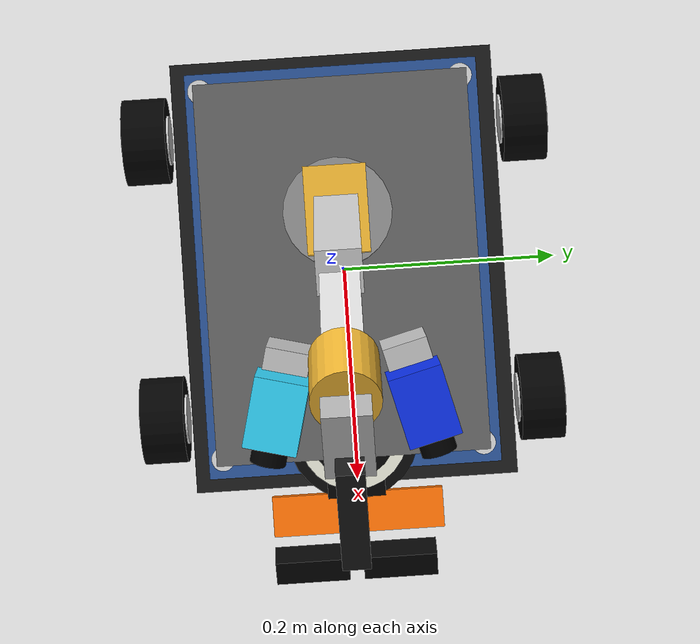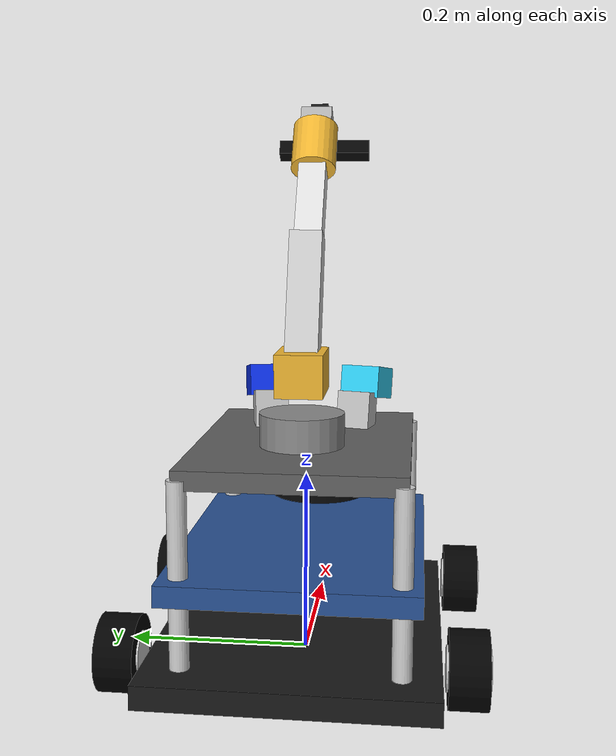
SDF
<?xml version="1.0"?>
<sdf version="1.10">
  <model name="mobile_sorting_robot">

    <!-- Kinematic omnidirectional base: direct model velocity     -->
    <plugin filename="gz-sim-velocity-control-system"
      name="gz::sim::systems::VelocityControl">
      <topic>/model/mobile_sorting_robot/cmd_vel</topic>
    </plugin>

    <!-- Ground-truth odometry publisher for simulation / ROS bridge -->
    <plugin filename="gz-sim-odometry-publisher-system"
      name="gz::sim::systems::OdometryPublisher">
      <odom_topic>/model/mobile_sorting_robot/odometry</odom_topic>
      <tf_topic>/model/mobile_sorting_robot/tf</tf_topic>
      <odom_frame>odom</odom_frame>
      <robot_base_frame>base_link</robot_base_frame>
      <dimensions>2</dimensions>
      <odom_publish_frequency>50</odom_publish_frequency>
    </plugin>

    <!-- Base link: three-layer chassis + visible IMU + IMU sensor -->
    <link name="base_link">
      <pose>0 0 0 0 0 0</pose>

      <inertial>
        <mass>4.0</mass>
        <inertia>
          <ixx>0.030</ixx>
          <iyy>0.045</iyy>
          <izz>0.055</izz>
          <ixy>0</ixy>
          <ixz>0</ixz>
          <iyz>0</iyz>
        </inertia>
      </inertial>

      <!-- Simple collision envelope for the upper chassis only.
           Keep it above the wheels to avoid ground / wheel contact jitter. -->
      <collision name="base_collision">
        <pose>0 0 0.125 0 0 0</pose>
        <geometry>
          <box>
            <size>0.38 0.28 0.080</size>
          </box>
        </geometry>
      </collision>

      <!-- Bottom deck: lower hardware layer -->
      <visual name="bottom_deck">
        <pose>0 0 0.025 0 0 0</pose>
        <geometry>
          <box>
            <size>0.40 0.30 0.025</size>
          </box>
        </geometry>
        <material>
          <ambient>0.10 0.10 0.10 1</ambient>
          <diffuse>0.10 0.10 0.10 1</diffuse>
        </material>
      </visual>

      <!-- Middle deck: LiDAR support layer -->
      <visual name="middle_deck">
        <pose>0 0 0.120 0 0 0</pose>
        <geometry>
          <box>
            <size>0.36 0.26 0.022</size>
          </box>
        </geometry>
        <material>
          <ambient>0.16 0.32 0.58 1</ambient>
          <diffuse>0.16 0.32 0.58 1</diffuse>
        </material>
      </visual>

      <!-- Top deck: dual cameras + arm layer -->
      <visual name="top_deck">
        <pose>0 0 0.230 0 0 0</pose>
        <geometry>
          <box>
            <size>0.32 0.23 0.020</size>
          </box>
        </geometry>
        <material>
          <ambient>0.38 0.38 0.38 1</ambient>
          <diffuse>0.38 0.38 0.38 1</diffuse>
        </material>
      </visual>

      <!-- Four metal standoffs -->
      <visual name="front_left_standoff">
        <pose>0.155 0.110 0.125 0 0 0</pose>
        <geometry>
          <cylinder>
            <radius>0.010</radius>
            <length>0.210</length>
          </cylinder>
        </geometry>
        <material>
          <ambient>0.82 0.82 0.82 1</ambient>
          <diffuse>0.82 0.82 0.82 1</diffuse>
        </material>
      </visual>

      <visual name="front_right_standoff">
        <pose>0.155 -0.110 0.125 0 0 0</pose>
        <geometry>
          <cylinder>
            <radius>0.010</radius>
            <length>0.210</length>
          </cylinder>
        </geometry>
        <material>
          <ambient>0.82 0.82 0.82 1</ambient>
          <diffuse>0.82 0.82 0.82 1</diffuse>
        </material>
      </visual>

      <visual name="rear_left_standoff">
        <pose>-0.155 0.110 0.125 0 0 0</pose>
        <geometry>
          <cylinder>
            <radius>0.010</radius>
            <length>0.210</length>
          </cylinder>
        </geometry>
        <material>
          <ambient>0.82 0.82 0.82 1</ambient>
          <diffuse>0.82 0.82 0.82 1</diffuse>
        </material>
      </visual>

      <visual name="rear_right_standoff">
        <pose>-0.155 -0.110 0.125 0 0 0</pose>
        <geometry>
          <cylinder>
            <radius>0.010</radius>
            <length>0.210</length>
          </cylinder>
        </geometry>
        <material>
          <ambient>0.82 0.82 0.82 1</ambient>
          <diffuse>0.82 0.82 0.82 1</diffuse>
        </material>
      </visual>

      <!-- Visible IMU module on bottom layer -->
      <visual name="imu_board_visual">
        <pose>0.045 0 0.058 0 0 0</pose>
        <geometry>
          <box>
            <size>0.075 0.055 0.014</size>
          </box>
        </geometry>
        <material>
          <ambient>0.45 0.12 0.85 1</ambient>
          <diffuse>0.45 0.12 0.85 1</diffuse>
        </material>
      </visual>

      <visual name="imu_chip_visual">
        <pose>0.045 0 0.068 0 0 0</pose>
        <geometry>
          <box>
            <size>0.026 0.026 0.006</size>
          </box>
        </geometry>
        <material>
          <ambient>0.02 0.02 0.02 1</ambient>
          <diffuse>0.02 0.02 0.02 1</diffuse>
        </material>
      </visual>

      <visual name="imu_axis_x_visual">
        <pose>0.082 0 0.075 0 0 0</pose>
        <geometry>
          <box>
            <size>0.030 0.006 0.006</size>
          </box>
        </geometry>
        <material>
          <ambient>1.00 0.05 0.05 1</ambient>
          <diffuse>1.00 0.05 0.05 1</diffuse>
        </material>
      </visual>

      <visual name="imu_axis_y_visual">
        <pose>0.045 0.030 0.075 0 0 0</pose>
        <geometry>
          <box>
            <size>0.006 0.030 0.006</size>
          </box>
        </geometry>
        <material>
          <ambient>0.05 1.00 0.05 1</ambient>
          <diffuse>0.05 1.00 0.05 1</diffuse>
        </material>
      </visual>

      <!-- Front direction marker: +X -->
      <visual name="front_marker">
        <pose>0.215 0 0.145 0 0 0</pose>
        <geometry>
          <box>
            <size>0.035 0.15 0.014</size>
          </box>
        </geometry>
        <material>
          <ambient>1.00 0.45 0.02 1</ambient>
          <diffuse>1.00 0.45 0.02 1</diffuse>
        </material>
      </visual>

      <!-- IMU data source -->
      <sensor name="imu_sensor" type="imu">
        <always_on>true</always_on>
        <update_rate>100</update_rate>
        <topic>/model/mobile_sorting_robot/imu</topic>
      </sensor>
    </link>

    <!-- YDLIDAR X3-like 2D lidar on middle deck, pushed forward  -->
    <link name="lidar_link">
      <!-- x=0.145 makes the lidar clearly forward; slightly protrudes from the deck -->
      <pose>0.145 0 0.170 0 0 0</pose>

      <inertial>
        <mass>0.18</mass>
        <inertia>
          <ixx>0.00025</ixx>
          <iyy>0.00025</iyy>
          <izz>0.00025</izz>
          <ixy>0</ixy>
          <ixz>0</ixz>
          <iyz>0</iyz>
        </inertia>
      </inertial>

      <visual name="lidar_black_base">
        <pose>0 0 -0.020 0 0 0</pose>
        <geometry>
          <cylinder>
            <radius>0.058</radius>
            <length>0.018</length>
          </cylinder>
        </geometry>
        <material>
          <ambient>0.03 0.03 0.03 1</ambient>
          <diffuse>0.03 0.03 0.03 1</diffuse>
        </material>
      </visual>

      <visual name="lidar_white_body">
        <pose>0 0 0.000 0 0 0</pose>
        <geometry>
          <cylinder>
            <radius>0.047</radius>
            <length>0.032</length>
          </cylinder>
        </geometry>
        <material>
          <ambient>0.88 0.88 0.82 1</ambient>
          <diffuse>0.88 0.88 0.82 1</diffuse>
        </material>
      </visual>

      <visual name="lidar_black_top">
        <pose>0 0 0.022 0 0 0</pose>
        <geometry>
          <cylinder>
            <radius>0.036</radius>
            <length>0.010</length>
          </cylinder>
        </geometry>
        <material>
          <ambient>0.01 0.01 0.01 1</ambient>
          <diffuse>0.01 0.01 0.01 1</diffuse>
        </material>
      </visual>

      <visual name="lidar_front_window">
        <pose>0.047 0 0.004 0 1.5708 0</pose>
        <geometry>
          <box>
            <size>0.012 0.050 0.014</size>
          </box>
        </geometry>
        <material>
          <ambient>0.00 0.00 0.00 1</ambient>
          <diffuse>0.00 0.00 0.00 1</diffuse>
        </material>
      </visual>

      <collision name="lidar_collision">
        <geometry>
          <cylinder>
            <radius>0.058</radius>
            <length>0.060</length>
          </cylinder>
        </geometry>
      </collision>

      <sensor name="gpu_lidar" type="gpu_lidar">
        <always_on>true</always_on>
        <visualize>true</visualize>
        <update_rate>10</update_rate>
        <topic>/model/mobile_sorting_robot/scan</topic>

        <ray>
          <scan>
            <horizontal>
              <samples>720</samples>
              <resolution>1</resolution>
              <min_angle>-3.1415926</min_angle>
              <max_angle>3.1415926</max_angle>
            </horizontal>
          </scan>
          <range>
            <min>0.12</min>
            <max>8.0</max>
            <resolution>0.01</resolution>
          </range>
        </ray>
      </sensor>
    </link>

    <joint name="lidar_joint" type="fixed">
      <parent>base_link</parent>
      <child>lidar_link</child>
    </joint>

    <!-- Left RGB camera above lidar, angled outward              -->
    <link name="left_rgb_camera_link">
      <pose>0.115 0.060 0.285 0 0.18 0.25</pose>

      <inertial>
        <mass>0.05</mass>
        <inertia>
          <ixx>0.0001</ixx>
          <iyy>0.0001</iyy>
          <izz>0.0001</izz>
          <ixy>0</ixy>
          <ixz>0</ixz>
          <iyz>0</iyz>
        </inertia>
      </inertial>

      <visual name="left_camera_body">
        <geometry>
          <box>
            <size>0.060 0.045 0.036</size>
          </box>
        </geometry>
        <material>
          <ambient>0.05 0.20 0.95 1</ambient>
          <diffuse>0.05 0.20 0.95 1</diffuse>
        </material>
      </visual>

      <visual name="left_camera_lens">
        <pose>0.036 0 0 0 1.5708 0</pose>
        <geometry>
          <cylinder>
            <radius>0.015</radius>
            <length>0.015</length>
          </cylinder>
        </geometry>
        <material>
          <ambient>0 0 0 1</ambient>
          <diffuse>0 0 0 1</diffuse>
        </material>
      </visual>

      <visual name="left_camera_mount">
        <pose>-0.034 0 -0.040 0 0 0</pose>
        <geometry>
          <box>
            <size>0.030 0.038 0.055</size>
          </box>
        </geometry>
        <material>
          <ambient>0.78 0.78 0.78 1</ambient>
          <diffuse>0.78 0.78 0.78 1</diffuse>
        </material>
      </visual>

      <collision name="left_camera_collision">
        <geometry>
          <box>
            <size>0.060 0.045 0.036</size>
          </box>
        </geometry>
      </collision>

      <sensor name="left_rgb_camera" type="camera">
        <always_on>true</always_on>
        <visualize>true</visualize>
        <update_rate>30</update_rate>
        <topic>/model/mobile_sorting_robot/left_camera</topic>
        <camera>
          <horizontal_fov>1.3962634</horizontal_fov>
          <image>
            <width>640</width>
            <height>480</height>
            <format>R8G8B8</format>
          </image>
          <clip>
            <near>0.05</near>
            <far>20.0</far>
          </clip>
        </camera>
      </sensor>
    </link>

    <joint name="left_rgb_camera_joint" type="fixed">
      <parent>base_link</parent>
      <child>left_rgb_camera_link</child>
    </joint>

    <!-- Right RGB camera above lidar, angled outward             -->
    <link name="right_rgb_camera_link">
      <pose>0.115 -0.060 0.285 0 0.18 -0.25</pose>

      <inertial>
        <mass>0.05</mass>
        <inertia>
          <ixx>0.0001</ixx>
          <iyy>0.0001</iyy>
          <izz>0.0001</izz>
          <ixy>0</ixy>
          <ixz>0</ixz>
          <iyz>0</iyz>
        </inertia>
      </inertial>

      <visual name="right_camera_body">
        <geometry>
          <box>
            <size>0.060 0.045 0.036</size>
          </box>
        </geometry>
        <material>
          <ambient>0.20 0.85 1.00 1</ambient>
          <diffuse>0.20 0.85 1.00 1</diffuse>
        </material>
      </visual>

      <visual name="right_camera_lens">
        <pose>0.036 0 0 0 1.5708 0</pose>
        <geometry>
          <cylinder>
            <radius>0.015</radius>
            <length>0.015</length>
          </cylinder>
        </geometry>
        <material>
          <ambient>0 0 0 1</ambient>
          <diffuse>0 0 0 1</diffuse>
        </material>
      </visual>

      <visual name="right_camera_mount">
        <pose>-0.034 0 -0.040 0 0 0</pose>
        <geometry>
          <box>
            <size>0.030 0.038 0.055</size>
          </box>
        </geometry>
        <material>
          <ambient>0.78 0.78 0.78 1</ambient>
          <diffuse>0.78 0.78 0.78 1</diffuse>
        </material>
      </visual>

      <collision name="right_camera_collision">
        <geometry>
          <box>
            <size>0.060 0.045 0.036</size>
          </box>
        </geometry>
      </collision>

      <sensor name="right_rgb_camera" type="camera">
        <always_on>true</always_on>
        <visualize>true</visualize>
        <update_rate>30</update_rate>
        <topic>/model/mobile_sorting_robot/right_camera</topic>
        <camera>
          <horizontal_fov>1.3962634</horizontal_fov>
          <image>
            <width>640</width>
            <height>480</height>
            <format>R8G8B8</format>
          </image>
          <clip>
            <near>0.05</near>
            <far>20.0</far>
          </clip>
        </camera>
      </sensor>
    </link>

    <joint name="right_rgb_camera_joint" type="fixed">
      <parent>base_link</parent>
      <child>right_rgb_camera_link</child>
    </joint>

    <!-- 6-DOF simplified arm: controllable visual manipulator     -->

    <link name="arm_base_link">
      <pose>-0.045 0 0.260 0 0 0</pose>
      <inertial>
        <mass>0.30</mass>
        <inertia>
          <ixx>0.001</ixx>
          <iyy>0.001</iyy>
          <izz>0.001</izz>
          <ixy>0</ixy>
          <ixz>0</ixz>
          <iyz>0</iyz>
        </inertia>
      </inertial>
      <visual name="arm_base_visual">
        <geometry>
          <cylinder>
            <radius>0.045</radius>
            <length>0.035</length>
          </cylinder>
        </geometry>
        <material>
          <ambient>0.55 0.55 0.55 1</ambient>
          <diffuse>0.55 0.55 0.55 1</diffuse>
        </material>
      </visual>
      <collision name="arm_base_collision">
        <geometry>
          <cylinder>
            <radius>0.045</radius>
            <length>0.035</length>
          </cylinder>
        </geometry>
      </collision>
    </link>

    <joint name="arm_mount_joint" type="fixed">
      <parent>base_link</parent>
      <child>arm_base_link</child>
    </joint>

    <link name="arm_link_1">
      <pose>-0.045 0 0.320 0 0 0</pose>
      <inertial>
        <mass>0.18</mass>
        <inertia>
          <ixx>0.0005</ixx>
          <iyy>0.0005</iyy>
          <izz>0.0005</izz>
          <ixy>0</ixy>
          <ixz>0</ixz>
          <iyz>0</iyz>
        </inertia>
      </inertial>
      <visual name="servo_1_visual">
        <geometry>
          <box>
            <size>0.070 0.050 0.045</size>
          </box>
        </geometry>
        <material>
          <ambient>0.95 0.72 0.20 1</ambient>
          <diffuse>0.95 0.72 0.20 1</diffuse>
        </material>
      </visual>
      <collision name="servo_1_collision">
        <geometry>
          <box>
            <size>0.070 0.050 0.045</size>
          </box>
        </geometry>
      </collision>
    </link>

    <joint name="arm_joint_1" type="revolute">
      <parent>arm_base_link</parent>
      <child>arm_link_1</child>
      <axis>
        <xyz>0 0 1</xyz>
        <limit>
          <lower>-3.14</lower>
          <upper>3.14</upper>
          <effort>5</effort>
          <velocity>1.5</velocity>
        </limit>
      </axis>
    </joint>

    <link name="arm_link_2">
      <pose>-0.020 0 0.390 0 0.35 0</pose>
      <inertial>
        <mass>0.18</mass>
        <inertia>
          <ixx>0.0006</ixx>
          <iyy>0.0006</iyy>
          <izz>0.0006</izz>
          <ixy>0</ixy>
          <ixz>0</ixz>
          <iyz>0</iyz>
        </inertia>
      </inertial>
      <visual name="upper_arm_visual">
        <geometry>
          <box>
            <size>0.035 0.035 0.150</size>
          </box>
        </geometry>
        <material>
          <ambient>0.82 0.82 0.82 1</ambient>
          <diffuse>0.82 0.82 0.82 1</diffuse>
        </material>
      </visual>
      <collision name="upper_arm_collision">
        <geometry>
          <box>
            <size>0.035 0.035 0.150</size>
          </box>
        </geometry>
      </collision>
    </link>

    <joint name="arm_joint_2" type="revolute">
      <parent>arm_link_1</parent>
      <child>arm_link_2</child>
      <axis>
        <xyz>0 1 0</xyz>
        <limit>
          <lower>-1.57</lower>
          <upper>1.57</upper>
          <effort>5</effort>
          <velocity>1.5</velocity>
        </limit>
      </axis>
    </joint>

    <link name="arm_link_3">
      <pose>0.035 0 0.480 0 0.55 0</pose>
      <inertial>
        <mass>0.16</mass>
        <inertia>
          <ixx>0.0005</ixx>
          <iyy>0.0005</iyy>
          <izz>0.0005</izz>
          <ixy>0</ixy>
          <ixz>0</ixz>
          <iyz>0</iyz>
        </inertia>
      </inertial>
      <visual name="forearm_visual">
        <geometry>
          <box>
            <size>0.030 0.030 0.130</size>
          </box>
        </geometry>
        <material>
          <ambient>0.88 0.88 0.88 1</ambient>
          <diffuse>0.88 0.88 0.88 1</diffuse>
        </material>
      </visual>
      <collision name="forearm_collision">
        <geometry>
          <box>
            <size>0.030 0.030 0.130</size>
          </box>
        </geometry>
      </collision>
    </link>

    <joint name="arm_joint_3" type="revolute">
      <parent>arm_link_2</parent>
      <child>arm_link_3</child>
      <axis>
        <xyz>0 1 0</xyz>
        <limit>
          <lower>-1.57</lower>
          <upper>1.57</upper>
          <effort>4</effort>
          <velocity>1.5</velocity>
        </limit>
      </axis>
    </joint>

    <link name="arm_link_4">
      <pose>0.080 0 0.555 0 0.55 0</pose>
      <inertial>
        <mass>0.10</mass>
        <inertia>
          <ixx>0.0003</ixx>
          <iyy>0.0003</iyy>
          <izz>0.0003</izz>
          <ixy>0</ixy>
          <ixz>0</ixz>
          <iyz>0</iyz>
        </inertia>
      </inertial>
      <visual name="wrist_1_visual">
        <geometry>
          <cylinder>
            <radius>0.025</radius>
            <length>0.055</length>
          </cylinder>
        </geometry>
        <material>
          <ambient>0.95 0.72 0.20 1</ambient>
          <diffuse>0.95 0.72 0.20 1</diffuse>
        </material>
      </visual>
      <collision name="wrist_1_collision">
        <geometry>
          <cylinder>
            <radius>0.025</radius>
            <length>0.055</length>
          </cylinder>
        </geometry>
      </collision>
    </link>

    <joint name="arm_joint_4" type="revolute">
      <parent>arm_link_3</parent>
      <child>arm_link_4</child>
      <axis>
        <xyz>1 0 0</xyz>
        <limit>
          <lower>-3.14</lower>
          <upper>3.14</upper>
          <effort>2</effort>
          <velocity>2.0</velocity>
        </limit>
      </axis>
    </joint>

    <link name="arm_link_5">
      <pose>0.115 0 0.575 0 0.55 0</pose>
      <inertial>
        <mass>0.08</mass>
        <inertia>
          <ixx>0.0002</ixx>
          <iyy>0.0002</iyy>
          <izz>0.0002</izz>
          <ixy>0</ixy>
          <ixz>0</ixz>
          <iyz>0</iyz>
        </inertia>
      </inertial>
      <visual name="wrist_2_visual">
        <geometry>
          <box>
            <size>0.050 0.035 0.035</size>
          </box>
        </geometry>
        <material>
          <ambient>0.70 0.70 0.70 1</ambient>
          <diffuse>0.70 0.70 0.70 1</diffuse>
        </material>
      </visual>
      <collision name="wrist_2_collision">
        <geometry>
          <box>
            <size>0.050 0.035 0.035</size>
          </box>
        </geometry>
      </collision>
    </link>

    <joint name="arm_joint_5" type="revolute">
      <parent>arm_link_4</parent>
      <child>arm_link_5</child>
      <axis>
        <xyz>0 1 0</xyz>
        <limit>
          <lower>-1.57</lower>
          <upper>1.57</upper>
          <effort>2</effort>
          <velocity>2.0</velocity>
        </limit>
      </axis>
    </joint>

    <link name="gripper_link">
      <pose>0.170 0 0.580 0 0.55 0</pose>
      <inertial>
        <mass>0.08</mass>
        <inertia>
          <ixx>0.0002</ixx>
          <iyy>0.0002</iyy>
          <izz>0.0002</izz>
          <ixy>0</ixy>
          <ixz>0</ixz>
          <iyz>0</iyz>
        </inertia>
      </inertial>

      <visual name="gripper_bar_visual">
        <geometry>
          <box>
            <size>0.080 0.020 0.020</size>
          </box>
        </geometry>
        <material>
          <ambient>0.10 0.10 0.10 1</ambient>
          <diffuse>0.10 0.10 0.10 1</diffuse>
        </material>
      </visual>

      <visual name="left_finger_visual">
        <pose>0.040 0.030 0 0 0 0</pose>
        <geometry>
          <box>
            <size>0.018 0.050 0.018</size>
          </box>
        </geometry>
        <material>
          <ambient>0.02 0.02 0.02 1</ambient>
          <diffuse>0.02 0.02 0.02 1</diffuse>
        </material>
      </visual>

      <visual name="right_finger_visual">
        <pose>0.040 -0.030 0 0 0 0</pose>
        <geometry>
          <box>
            <size>0.018 0.050 0.018</size>
          </box>
        </geometry>
        <material>
          <ambient>0.02 0.02 0.02 1</ambient>
          <diffuse>0.02 0.02 0.02 1</diffuse>
        </material>
      </visual>

      <collision name="gripper_collision">
        <geometry>
          <box>
            <size>0.095 0.085 0.040</size>
          </box>
        </geometry>
      </collision>
    </link>

    <joint name="arm_joint_6" type="revolute">
      <parent>arm_link_5</parent>
      <child>gripper_link</child>
      <axis>
        <xyz>1 0 0</xyz>
        <limit>
          <lower>-3.14</lower>
          <upper>3.14</upper>
          <effort>2</effort>
          <velocity>2.0</velocity>
        </limit>
      </axis>
    </joint>

    <!-- Arm joint position controllers                            -->

    <plugin filename="gz-sim-joint-position-controller-system"
      name="gz::sim::systems::JointPositionController">
      <joint_name>arm_joint_1</joint_name>
      <topic>/model/mobile_sorting_robot/arm/joint1/cmd_pos</topic>
      <p_gain>8</p_gain>
      <i_gain>0</i_gain>
      <d_gain>0.05</d_gain>
      <cmd_max>10</cmd_max>
      <cmd_min>-10</cmd_min>
    </plugin>

    <plugin filename="gz-sim-joint-position-controller-system"
      name="gz::sim::systems::JointPositionController">
      <joint_name>arm_joint_2</joint_name>
      <topic>/model/mobile_sorting_robot/arm/joint2/cmd_pos</topic>
      <p_gain>8</p_gain>
      <i_gain>0</i_gain>
      <d_gain>0.05</d_gain>
      <cmd_max>10</cmd_max>
      <cmd_min>-10</cmd_min>
    </plugin>

    <plugin filename="gz-sim-joint-position-controller-system"
      name="gz::sim::systems::JointPositionController">
      <joint_name>arm_joint_3</joint_name>
      <topic>/model/mobile_sorting_robot/arm/joint3/cmd_pos</topic>
      <p_gain>8</p_gain>
      <i_gain>0</i_gain>
      <d_gain>0.05</d_gain>
      <cmd_max>10</cmd_max>
      <cmd_min>-10</cmd_min>
    </plugin>

    <plugin filename="gz-sim-joint-position-controller-system"
      name="gz::sim::systems::JointPositionController">
      <joint_name>arm_joint_4</joint_name>
      <topic>/model/mobile_sorting_robot/arm/joint4/cmd_pos</topic>
      <p_gain>5</p_gain>
      <i_gain>0</i_gain>
      <d_gain>0.03</d_gain>
      <cmd_max>8</cmd_max>
      <cmd_min>-8</cmd_min>
    </plugin>

    <plugin filename="gz-sim-joint-position-controller-system"
      name="gz::sim::systems::JointPositionController">
      <joint_name>arm_joint_5</joint_name>
      <topic>/model/mobile_sorting_robot/arm/joint5/cmd_pos</topic>
      <p_gain>5</p_gain>
      <i_gain>0</i_gain>
      <d_gain>0.03</d_gain>
      <cmd_max>8</cmd_max>
      <cmd_min>-8</cmd_min>
    </plugin>

    <plugin filename="gz-sim-joint-position-controller-system"
      name="gz::sim::systems::JointPositionController">
      <joint_name>arm_joint_6</joint_name>
      <topic>/model/mobile_sorting_robot/arm/joint6/cmd_pos</topic>
      <p_gain>5</p_gain>
      <i_gain>0</i_gain>
      <d_gain>0.03</d_gain>
      <cmd_max>8</cmd_max>
      <cmd_min>-8</cmd_min>
    </plugin>

    <!-- Four 80mm wheels                                         -->
    <link name="front_left_wheel">
      <pose>0.130 0.175 0.040 1.57079632679 0 0</pose>
      <inertial>
        <mass>0.25</mass>
        <inertia>
          <ixx>0.00013</ixx>
          <iyy>0.00013</iyy>
          <izz>0.00020</izz>
          <ixy>0</ixy>
          <ixz>0</ixz>
          <iyz>0</iyz>
        </inertia>
      </inertial>
      <collision name="collision">
        <geometry>
          <cylinder>
            <radius>0.04</radius>
            <length>0.040</length>
          </cylinder>
        </geometry>
      </collision>
      <visual name="tire">
        <geometry>
          <cylinder>
            <radius>0.04</radius>
            <length>0.040</length>
          </cylinder>
        </geometry>
        <material>
          <ambient>0.01 0.01 0.01 1</ambient>
          <diffuse>0.01 0.01 0.01 1</diffuse>
        </material>
      </visual>
      <visual name="hub">
        <geometry>
          <cylinder>
            <radius>0.023</radius>
            <length>0.044</length>
          </cylinder>
        </geometry>
        <material>
          <ambient>0.80 0.80 0.80 1</ambient>
          <diffuse>0.80 0.80 0.80 1</diffuse>
        </material>
      </visual>
    </link>

    <link name="rear_left_wheel">
      <pose>-0.130 0.175 0.040 1.57079632679 0 0</pose>
      <inertial>
        <mass>0.25</mass>
        <inertia>
          <ixx>0.00013</ixx>
          <iyy>0.00013</iyy>
          <izz>0.00020</izz>
          <ixy>0</ixy>
          <ixz>0</ixz>
          <iyz>0</iyz>
        </inertia>
      </inertial>
      <collision name="collision">
        <geometry>
          <cylinder>
            <radius>0.04</radius>
            <length>0.040</length>
          </cylinder>
        </geometry>
      </collision>
      <visual name="tire">
        <geometry>
          <cylinder>
            <radius>0.04</radius>
            <length>0.040</length>
          </cylinder>
        </geometry>
        <material>
          <ambient>0.01 0.01 0.01 1</ambient>
          <diffuse>0.01 0.01 0.01 1</diffuse>
        </material>
      </visual>
      <visual name="hub">
        <geometry>
          <cylinder>
            <radius>0.023</radius>
            <length>0.044</length>
          </cylinder>
        </geometry>
        <material>
          <ambient>0.80 0.80 0.80 1</ambient>
          <diffuse>0.80 0.80 0.80 1</diffuse>
        </material>
      </visual>
    </link>

    <link name="front_right_wheel">
      <pose>0.130 -0.175 0.040 1.57079632679 0 0</pose>
      <inertial>
        <mass>0.25</mass>
        <inertia>
          <ixx>0.00013</ixx>
          <iyy>0.00013</iyy>
          <izz>0.00020</izz>
          <ixy>0</ixy>
          <ixz>0</ixz>
          <iyz>0</iyz>
        </inertia>
      </inertial>
      <collision name="collision">
        <geometry>
          <cylinder>
            <radius>0.04</radius>
            <length>0.040</length>
          </cylinder>
        </geometry>
      </collision>
      <visual name="tire">
        <geometry>
          <cylinder>
            <radius>0.04</radius>
            <length>0.040</length>
          </cylinder>
        </geometry>
        <material>
          <ambient>0.01 0.01 0.01 1</ambient>
          <diffuse>0.01 0.01 0.01 1</diffuse>
        </material>
      </visual>
      <visual name="hub">
        <geometry>
          <cylinder>
            <radius>0.023</radius>
            <length>0.044</length>
          </cylinder>
        </geometry>
        <material>
          <ambient>0.80 0.80 0.80 1</ambient>
          <diffuse>0.80 0.80 0.80 1</diffuse>
        </material>
      </visual>
    </link>

    <link name="rear_right_wheel">
      <pose>-0.130 -0.175 0.040 1.57079632679 0 0</pose>
      <inertial>
        <mass>0.25</mass>
        <inertia>
          <ixx>0.00013</ixx>
          <iyy>0.00013</iyy>
          <izz>0.00020</izz>
          <ixy>0</ixy>
          <ixz>0</ixz>
          <iyz>0</iyz>
        </inertia>
      </inertial>
      <collision name="collision">
        <geometry>
          <cylinder>
            <radius>0.04</radius>
            <length>0.040</length>
          </cylinder>
        </geometry>
      </collision>
      <visual name="tire">
        <geometry>
          <cylinder>
            <radius>0.04</radius>
            <length>0.040</length>
          </cylinder>
        </geometry>
        <material>
          <ambient>0.01 0.01 0.01 1</ambient>
          <diffuse>0.01 0.01 0.01 1</diffuse>
        </material>
      </visual>
      <visual name="hub">
        <geometry>
          <cylinder>
            <radius>0.023</radius>
            <length>0.044</length>
          </cylinder>
        </geometry>
        <material>
          <ambient>0.80 0.80 0.80 1</ambient>
          <diffuse>0.80 0.80 0.80 1</diffuse>
        </material>
      </visual>
    </link>

    <joint name="front_left_wheel_joint" type="revolute">
      <parent>base_link</parent>
      <child>front_left_wheel</child>
      <axis>
        <xyz>0 0 1</xyz>
        <limit>
          <lower>-1e16</lower>
          <upper>1e16</upper>
        </limit>
      </axis>
    </joint>

    <joint name="rear_left_wheel_joint" type="revolute">
      <parent>base_link</parent>
      <child>rear_left_wheel</child>
      <axis>
        <xyz>0 0 1</xyz>
        <limit>
          <lower>-1e16</lower>
          <upper>1e16</upper>
        </limit>
      </axis>
    </joint>

    <joint name="front_right_wheel_joint" type="revolute">
      <parent>base_link</parent>
      <child>front_right_wheel</child>
      <axis>
        <xyz>0 0 1</xyz>
        <limit>
          <lower>-1e16</lower>
          <upper>1e16</upper>
        </limit>
      </axis>
    </joint>

    <joint name="rear_right_wheel_joint" type="revolute">
      <parent>base_link</parent>
      <child>rear_right_wheel</child>
      <axis>
        <xyz>0 0 1</xyz>
        <limit>
          <lower>-1e16</lower>
          <upper>1e16</upper>
        </limit>
      </axis>
    </joint>

  </model>
</sdf>
